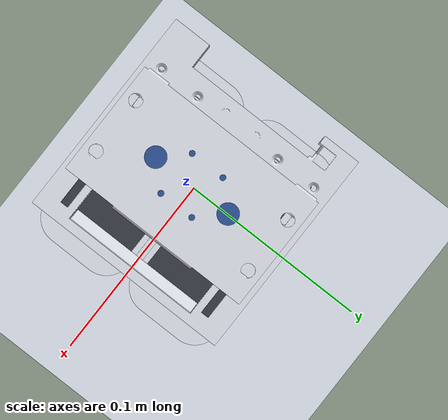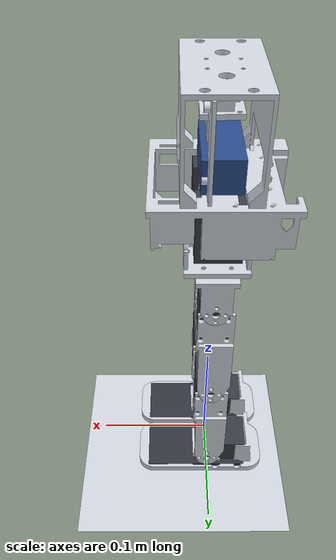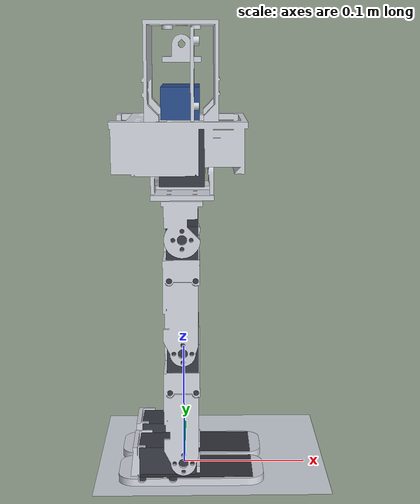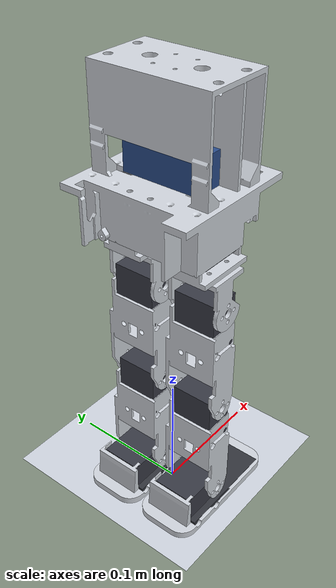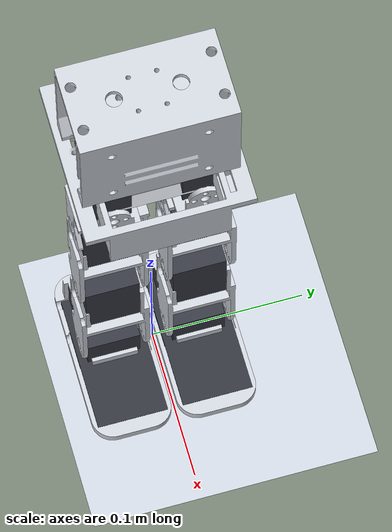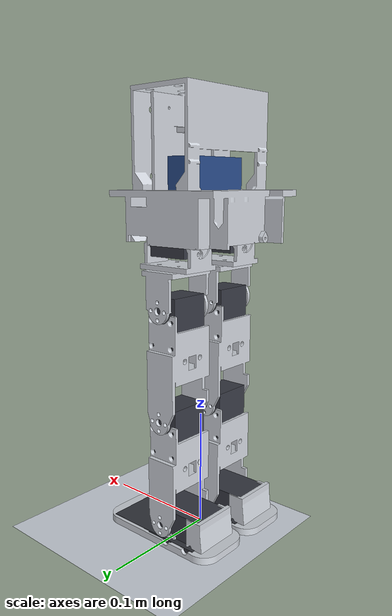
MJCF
<mujoco model="bimo_like_biped_v2">
  <compiler angle="degree" autolimits="true" meshdir="../cad/stl"/>
  <option timestep="0.002" gravity="0 0 -9.81" integrator="implicitfast"/>

  <visual>
    <global offwidth="900" offheight="1100"/>
    <headlight diffuse="0.7 0.7 0.7" ambient="0.35 0.35 0.35"/>
  </visual>

  <default>
    <joint type="hinge" damping="0.6" armature="0.008" frictionloss="0.02" limited="true"/>
    <position kp="40" forcerange="-3 3"/>          <!-- STS3215 ~2.9 N*m stall -->
    <geom contype="0" conaffinity="0"/>            <!-- internal parts don't self-collide -->
    <default class="cad">
      <geom type="mesh" contype="2" conaffinity="0" group="1" rgba="0.82 0.84 0.87 1"/>
    </default>
    <default class="cadvis">
      <geom type="mesh" contype="0" conaffinity="0" group="1" rgba="0.82 0.84 0.87 1"/>
    </default>
    <default class="servo">
      <geom contype="2" conaffinity="0" group="1" rgba="0.22 0.23 0.27 1"/>
    </default>
  </default>

  <asset>
    <!-- checker floor: the render camera tracks the torso, so an untextured
         plane makes the dash look like running in place -->
    <texture name="grid" type="2d" builtin="checker" rgb1="0.87 0.89 0.92"
             rgb2="0.77 0.80 0.85" width="512" height="512"/>
    <material name="floor_mat" texture="grid" texrepeat="24 24" texuniform="true"/>
    <mesh name="pelvis"     file="pelvis.stl"     scale="0.001 0.001 0.001"/>
    <mesh name="tower"      file="tower.stl"      scale="0.001 0.001 0.001"/>
    <mesh name="gopro_base" file="gopro_base.stl" scale="0.001 0.001 0.001"/>
    <mesh name="yoke_roll"  file="yoke_roll.stl"  scale="0.001 0.001 0.001"/>
    <mesh name="yoke_pitch" file="yoke_pitch.stl" scale="0.001 0.001 0.001"/>
    <mesh name="leg_link"   file="leg_link.stl"   scale="0.001 0.001 0.001"/>
    <mesh name="foot"       file="foot.stl"               scale="0.001 0.001 0.001"/>
  </asset>

  <worldbody>
    <light pos="0.6 0.4 1.5" dir="-0.4 -0.3 -1" directional="true"/>
    <geom name="floor" type="plane" size="3 3 0.1" contype="1" conaffinity="3"
          material="floor_mat" friction="1 0.02 0.001" condim="4"/>

    <body name="torso" pos="0 0 0.283">
      <freejoint/>
      <inertial pos="0.0002 -0.0005 0.0029" quat="0.7041 0.0847 -0.6999 -0.0853" mass="0.3418" diaginertia="2.7267e-04 3.0642e-04 4.7889e-04"/>
      <geom name="torso" type="box" size="0.023 0.052 0.036" mass="0.344" rgba="0.80 0.82 0.85 1" group="3"/>
      <geom class="cad" mesh="pelvis" pos="0 0 0.00411"/>
      <geom class="cad" mesh="tower" pos="0 0 0.00411"/>
      <geom class="cad" mesh="gopro_base" pos="0 0 0.04761"/>
      <geom name="servo_L_roll" class="servo" type="box" pos="0 0.028 -0.02346" size="0.01735 0.01236 0.02261"/>
      <geom name="servo_R_roll" class="servo" type="box" pos="0 -0.028 -0.02346" size="0.01735 0.01236 0.02261"/>
      <geom name="battery" type="box" pos="-0.001 0 0.01661" size="0.015 0.031 0.0125"
            group="1" rgba="0.16 0.30 0.55 1"/>
      <site name="imu" pos="0 0 0"/>

      <!-- ================= LEFT LEG ================= -->
      <body name="L_hip" pos="0 0.028 -0.036">
        <joint name="L_hip_roll" axis="1 0 0" range="-25 25"/>
        <inertial pos="-0.0013 0.0002 -0.0215" quat="0.7520 0.3454 0.4665 -0.3123" mass="0.0296" diaginertia="1.0690e-05 1.2121e-05 1.2719e-05"/>
        <geom type="box" pos="0 0 -0.025" size="0.0175 0.0123 0.025" mass="0.029" rgba="0.22 0.23 0.27 1" group="3"/>
        <geom class="cad" mesh="yoke_roll"/>
        <geom class="cad" mesh="yoke_pitch" pos="0 0 -0.05"/>
        <body name="L_thigh" pos="0 0 -0.05">
          <joint name="L_hip_pitch" axis="0 1 0" range="-110 60"/>
        <inertial pos="-0.0011 0.0003 -0.0241" quat="0.7186 0.0063 -0.6954 0.0026" mass="0.0786" diaginertia="1.8626e-05 5.2580e-05 6.1786e-05"/>
          <geom type="box" pos="0 0 -0.045" size="0.0175 0.0123 0.045" mass="0.077" rgba="0.24 0.25 0.29 1" group="3"/>
          <geom class="cad" mesh="leg_link"/>
          <geom class="servo" type="box" pos="0 0 -0.0125" size="0.01236 0.01735 0.02261"/>
          <body name="L_shin" pos="0 0 -0.09">
            <joint name="L_knee" axis="0 1 0" range="-95 5"/>
        <inertial pos="-0.0011 0.0003 -0.0241" quat="0.7186 0.0063 -0.6954 0.0026" mass="0.0786" diaginertia="1.8626e-05 5.2580e-05 6.1786e-05"/>
            <geom type="box" pos="0 0 -0.045" size="0.0175 0.0123 0.045" mass="0.077" rgba="0.24 0.25 0.29 1" group="3"/>
          <geom class="cad" mesh="leg_link"/>
          <geom class="servo" type="box" pos="0 0 -0.0125" size="0.01236 0.01735 0.02261"/>
            <body name="L_foot" pos="0 0 -0.09">
              <joint name="L_ankle" axis="0 1 0" range="-40 40"/>
        <inertial pos="-0.0039 0 -0.0059" quat="0.9970 0 0.0770 0" mass="0.1028" diaginertia="2.3140e-05 7.1397e-05 8.0567e-05"/>
              <geom name="L_sole" type="box" pos="0.010 0 -0.0140" size="0.045 0.023 0.004"
                    contype="1" conaffinity="1" mass="0.1104" rgba="0.20 0.21 0.24 1" friction="1 0.02 0.001" condim="4"/>
              <geom class="cadvis" mesh="foot" pos="0 0 -0.01636"/>
              <geom class="servo" type="box" pos="-0.0125 0 0" size="0.02261 0.01735 0.01236"/>
            </body>
          </body>
        </body>
      </body>

      <!-- ================= RIGHT LEG ================= -->
      <body name="R_hip" pos="0 -0.028 -0.036">
        <joint name="R_hip_roll" axis="1 0 0" range="-25 25"/>
        <inertial pos="-0.0013 0.0002 -0.0215" quat="0.7520 0.3454 0.4665 -0.3123" mass="0.0296" diaginertia="1.0690e-05 1.2121e-05 1.2719e-05"/>
        <geom type="box" pos="0 0 -0.025" size="0.0175 0.0123 0.025" mass="0.029" rgba="0.22 0.23 0.27 1" group="3"/>
        <geom class="cad" mesh="yoke_roll"/>
        <geom class="cad" mesh="yoke_pitch" pos="0 0 -0.05"/>
        <body name="R_thigh" pos="0 0 -0.05">
          <joint name="R_hip_pitch" axis="0 1 0" range="-110 60"/>
        <inertial pos="-0.0011 0.0003 -0.0241" quat="0.7186 0.0063 -0.6954 0.0026" mass="0.0786" diaginertia="1.8626e-05 5.2580e-05 6.1786e-05"/>
          <geom type="box" pos="0 0 -0.045" size="0.0175 0.0123 0.045" mass="0.077" rgba="0.24 0.25 0.29 1" group="3"/>
          <geom class="cad" mesh="leg_link"/>
          <geom class="servo" type="box" pos="0 0 -0.0125" size="0.01236 0.01735 0.02261"/>
          <body name="R_shin" pos="0 0 -0.09">
            <joint name="R_knee" axis="0 1 0" range="-95 5"/>
        <inertial pos="-0.0011 0.0003 -0.0241" quat="0.7186 0.0063 -0.6954 0.0026" mass="0.0786" diaginertia="1.8626e-05 5.2580e-05 6.1786e-05"/>
            <geom type="box" pos="0 0 -0.045" size="0.0175 0.0123 0.045" mass="0.077" rgba="0.24 0.25 0.29 1" group="3"/>
          <geom class="cad" mesh="leg_link"/>
          <geom class="servo" type="box" pos="0 0 -0.0125" size="0.01236 0.01735 0.02261"/>
            <body name="R_foot" pos="0 0 -0.09">
              <joint name="R_ankle" axis="0 1 0" range="-40 40"/>
        <inertial pos="-0.0039 0 -0.0059" quat="0.9970 0 0.0770 0" mass="0.1028" diaginertia="2.3140e-05 7.1397e-05 8.0567e-05"/>
              <geom name="R_sole" type="box" pos="0.010 0 -0.0140" size="0.045 0.023 0.004"
                    contype="1" conaffinity="1" mass="0.1104" rgba="0.20 0.21 0.24 1" friction="1 0.02 0.001" condim="4"/>
              <geom class="cadvis" mesh="foot" pos="0 0 -0.01636"/>
              <geom class="servo" type="box" pos="-0.0125 0 0" size="0.02261 0.01735 0.01236"/>
            </body>
          </body>
        </body>
      </body>
    </body>
  </worldbody>

  <actuator>
    <position name="L_hip_roll"  joint="L_hip_roll"/>
    <position name="L_hip_pitch" joint="L_hip_pitch"/>
    <position name="L_knee"      joint="L_knee"/>
    <position name="L_ankle"     joint="L_ankle"/>
    <position name="R_hip_roll"  joint="R_hip_roll"/>
    <position name="R_hip_pitch" joint="R_hip_pitch"/>
    <position name="R_knee"      joint="R_knee"/>
    <position name="R_ankle"     joint="R_ankle"/>
  </actuator>

  <sensor>
    <framezaxis objtype="site" objname="imu" name="torso_up"/>
    <framepos   objtype="site" objname="imu" name="torso_pos"/>
  </sensor>
</mujoco>
